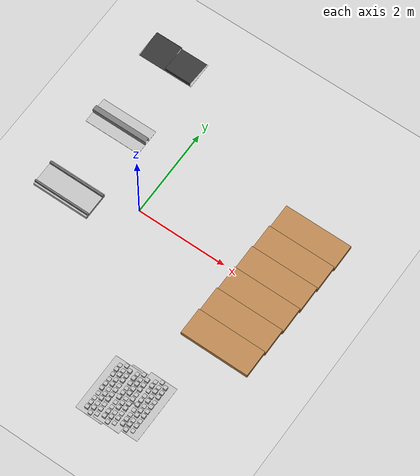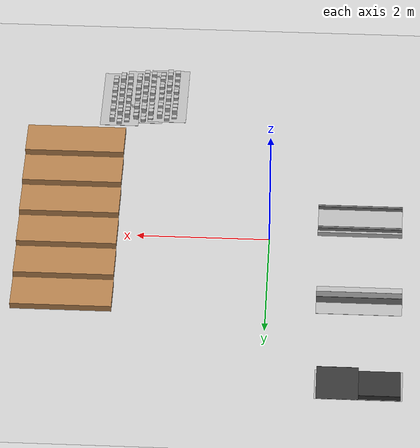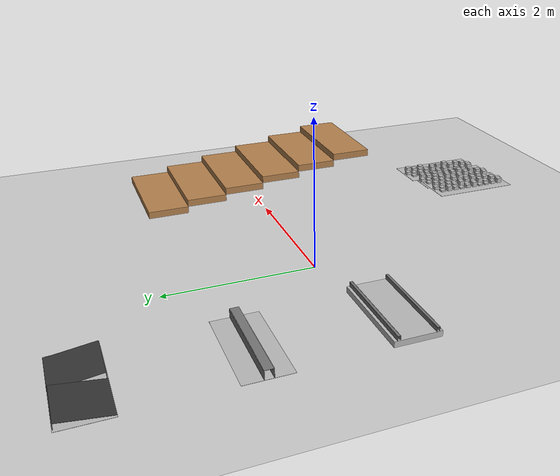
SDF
<sdf version="1.6">
 <world name="default">
  <light name="sun" type="directional">
   <pose>0 0 10 0 -0 0</pose>
   <diffuse>0.8 0.8 0.8 1</diffuse>
   <specular>0.1 0.1 0.1 1</specular>
   <attenuation>
    <range>1000</range>
    <constant>0.9</constant>
    <linear>0.01</linear>
    <quadratic>0.001</quadratic>
   </attenuation>
   <direction>-0.5 0.5 -1</direction>
  </light>
  <model name="ground_plane">
   <static>1</static>
   <link name="link">
    <collision name="collision">
     <geometry><plane><normal>0 0 1</normal><size>100 100</size></plane></geometry>
     <surface><friction><ode><mu>100</mu><mu2>50</mu2></ode></friction></surface>
    </collision>
    <visual name="visual">
     <cast_shadows>0</cast_shadows>
     <geometry><plane><normal>0 0 1</normal><size>100 100</size></plane></geometry>
     <material>
      <script><uri>file://media/materials/scripts/gazebo.material</uri><name>Gazebo/Grey</name></script>
     </material>
    </visual>
   </link>
  </model>
  <gravity>0 0 -9.8</gravity>
  <magnetic_field>6e-06 2.3e-05 -4.2e-05</magnetic_field>
  <atmosphere type="adiabatic"/>
  <physics name="default_physics" default="0" type="ode">
   <max_step_size>0.001</max_step_size>
   <real_time_factor>1</real_time_factor>
   <real_time_update_rate>1000</real_time_update_rate>
  </physics>
  <scene><ambient>0.4 0.4 0.4 1</ambient><background>0.7 0.7 0.7 1</background><shadows>1</shadows></scene>
  <spherical_coordinates>
   <surface_model>EARTH_WGS84</surface_model>
   <latitude_deg>0</latitude_deg>
   <longitude_deg>0</longitude_deg>
   <elevation>0</elevation>
   <heading_deg>0</heading_deg>
  </spherical_coordinates>
  <model name="frc2016_roughterrain">
   <static>1</static>
   <link name="link">
    <visual name="platform">
     <pose>0 0 0.08269 0 -0 0</pose>
     <geometry><box><size>1.27 0.5969 0.003175</size></box></geometry>
    </visual>
    <collision name="platform">
     <pose>0 0 0.08269 0 -0 0</pose>
     <geometry><box><size>1.27 0.5969 0.003175</size></box></geometry>
    </collision>
    <visual name="row1_block1_sm">
     <pose>0.51435 0.1143 0.09698 0 -0 0</pose>
     <geometry><box><size>0.0762 0.0762 0.0254</size></box></geometry>
    </visual>
    <collision name="row1_block1_sm">
     <pose>0.51435 0.1143 0.09698 0 -0 0</pose>
     <geometry><box><size>0.0762 0.0762 0.0254</size></box></geometry>
    </collision>
    <visual name="row1_block2_lg">
     <pose>0.40005 0.1143 0.12238 0 -0 0</pose>
     <geometry><box><size>0.0762 0.0762 0.0762</size></box></geometry>
    </visual>
    <collision name="row1_block2_lg">
     <pose>0.40005 0.1143 0.12238 0 -0 0</pose>
     <geometry><box><size>0.0762 0.0762 0.0762</size></box></geometry>
    </collision>
    <visual name="row1_block3_md">
     <pose>0.28575 0.1143 0.10968 0 -0 0</pose>
     <geometry><box><size>0.0762 0.0762 0.0508</size></box></geometry>
    </visual>
    <collision name="row1_block3_md">
     <pose>0.28575 0.1143 0.10968 0 -0 0</pose>
     <geometry><box><size>0.0762 0.0762 0.0508</size></box></geometry>
    </collision>
    <visual name="row1_block4_sm">
     <pose>0.17145 0.1143 0.09698 0 -0 0</pose>
     <geometry><box><size>0.0762 0.0762 0.0254</size></box></geometry>
    </visual>
    <collision name="row1_block4_sm">
     <pose>0.17145 0.1143 0.09698 0 -0 0</pose>
     <geometry><box><size>0.0762 0.0762 0.0254</size></box></geometry>
    </collision>
    <visual name="row1_block5_md">
     <pose>0.05715 0.1143 0.10968 0 -0 0</pose>
     <geometry><box><size>0.0762 0.0762 0.0508</size></box></geometry>
    </visual>
    <collision name="row1_block5_md">
     <pose>0.05715 0.1143 0.10968 0 -0 0</pose>
     <geometry><box><size>0.0762 0.0762 0.0508</size></box></geometry>
    </collision>
    <visual name="row1_block6_lg">
     <pose>-0.05715 0.1143 0.12238 0 -0 0</pose>
     <geometry><box><size>0.0762 0.0762 0.0762</size></box></geometry>
    </visual>
    <collision name="row1_block6_lg">
     <pose>-0.05715 0.1143 0.12238 0 -0 0</pose>
     <geometry><box><size>0.0762 0.0762 0.0762</size></box></geometry>
    </collision>
    <visual name="row1_block7_sm">
     <pose>-0.17145 0.1143 0.09698 0 -0 0</pose>
     <geometry><box><size>0.0762 0.0762 0.0254</size></box></geometry>
    </visual>
    <collision name="row1_block7_sm">
     <pose>-0.17145 0.1143 0.09698 0 -0 0</pose>
     <geometry><box><size>0.0762 0.0762 0.0254</size></box></geometry>
    </collision>
    <visual name="row1_block8_sm">
     <pose>-0.28575 0.1143 0.09698 0 -0 0</pose>
     <geometry><box><size>0.0762 0.0762 0.0254</size></box></geometry>
    </visual>
    <collision name="row1_block8_sm">
     <pose>-0.28575 0.1143 0.09698 0 -0 0</pose>
     <geometry><box><size>0.0762 0.0762 0.0254</size></box></geometry>
    </collision>
    <visual name="row1_block9_md">
     <pose>-0.40005 0.1143 0.10968 0 -0 0</pose>
     <geometry><box><size>0.0762 0.0762 0.0508</size></box></geometry>
    </visual>
    <collision name="row1_block9_md">
     <pose>-0.40005 0.1143 0.10968 0 -0 0</pose>
     <geometry><box><size>0.0762 0.0762 0.0508</size></box></geometry>
    </collision>
    <visual name="row1_block10_lg">
     <pose>-0.51435 0.1143 0.12238 0 -0 0</pose>
     <geometry><box><size>0.0762 0.0762 0.0762</size></box></geometry>
    </visual>
    <collision name="row1_block10_lg">
     <pose>-0.51435 0.1143 0.12238 0 -0 0</pose>
     <geometry><box><size>0.0762 0.0762 0.0762</size></box></geometry>
    </collision>
    <visual name="row2_block1_md">
     <pose>0.5715 0 0.10968 0 -0 0</pose>
     <geometry><box><size>0.0762 0.0762 0.0508</size></box></geometry>
    </visual>
    <collision name="row2_block1_md">
     <pose>0.5715 0 0.10968 0 -0 0</pose>
     <geometry><box><size>0.0762 0.0762 0.0508</size></box></geometry>
    </collision>
    <visual name="row2_block2_sm">
     <pose>0.4572 0 0.09698 0 -0 0</pose>
     <geometry><box><size>0.0762 0.0762 0.0254</size></box></geometry>
    </visual>
    <collision name="row2_block2_sm">
     <pose>0.4572 0 0.09698 0 -0 0</pose>
     <geometry><box><size>0.0762 0.0762 0.0254</size></box></geometry>
    </collision>
    <visual name="row2_block3_lg">
     <pose>0.3429 0 0.12238 0 -0 0</pose>
     <geometry><box><size>0.0762 0.0762 0.0762</size></box></geometry>
    </visual>
    <collision name="row2_block3_lg">
     <pose>0.3429 0 0.12238 0 -0 0</pose>
     <geometry><box><size>0.0762 0.0762 0.0762</size></box></geometry>
    </collision>
    <visual name="row2_block4_md">
     <pose>0.2286 0 0.10968 0 -0 0</pose>
     <geometry><box><size>0.0762 0.0762 0.0508</size></box></geometry>
    </visual>
    <collision name="row2_block4_md">
     <pose>0.2286 0 0.10968 0 -0 0</pose>
     <geometry><box><size>0.0762 0.0762 0.0508</size></box></geometry>
    </collision>
    <visual name="row2_block5_lg">
     <pose>0.1143 0 0.12238 0 -0 0</pose>
     <geometry><box><size>0.0762 0.0762 0.0762</size></box></geometry>
    </visual>
    <collision name="row2_block5_lg">
     <pose>0.1143 0 0.12238 0 -0 0</pose>
     <geometry><box><size>0.0762 0.0762 0.0762</size></box></geometry>
    </collision>
    <visual name="row2_block6_sm">
     <pose>0 0 0.09698 0 -0 0</pose>
     <geometry><box><size>0.0762 0.0762 0.0254</size></box></geometry>
    </visual>
    <collision name="row2_block6_sm">
     <pose>0 0 0.09698 0 -0 0</pose>
     <geometry><box><size>0.0762 0.0762 0.0254</size></box></geometry>
    </collision>
    <visual name="row2_block7_md">
     <pose>-0.1143 0 0.10968 0 -0 0</pose>
     <geometry><box><size>0.0762 0.0762 0.0508</size></box></geometry>
    </visual>
    <collision name="row2_block7_md">
     <pose>-0.1143 0 0.10968 0 -0 0</pose>
     <geometry><box><size>0.0762 0.0762 0.0508</size></box></geometry>
    </collision>
    <visual name="row2_block8_lg">
     <pose>-0.2286 0 0.12238 0 -0 0</pose>
     <geometry><box><size>0.0762 0.0762 0.0762</size></box></geometry>
    </visual>
    <collision name="row2_block8_lg">
     <pose>-0.2286 0 0.12238 0 -0 0</pose>
     <geometry><box><size>0.0762 0.0762 0.0762</size></box></geometry>
    </collision>
    <visual name="row2_block9_sm">
     <pose>-0.3429 0 0.09698 0 -0 0</pose>
     <geometry><box><size>0.0762 0.0762 0.0254</size></box></geometry>
    </visual>
    <collision name="row2_block9_sm">
     <pose>-0.3429 0 0.09698 0 -0 0</pose>
     <geometry><box><size>0.0762 0.0762 0.0254</size></box></geometry>
    </collision>
    <visual name="row2_block10_lg">
     <pose>-0.4572 0 0.12238 0 -0 0</pose>
     <geometry><box><size>0.0762 0.0762 0.0762</size></box></geometry>
    </visual>
    <collision name="row2_block10_lg">
     <pose>-0.4572 0 0.12238 0 -0 0</pose>
     <geometry><box><size>0.0762 0.0762 0.0762</size></box></geometry>
    </collision>
    <visual name="row2_block11_md">
     <pose>-0.5715 0 0.10968 0 -0 0</pose>
     <geometry><box><size>0.0762 0.0762 0.0508</size></box></geometry>
    </visual>
    <collision name="row2_block11_md">
     <pose>-0.5715 0 0.10968 0 -0 0</pose>
     <geometry><box><size>0.0762 0.0762 0.0508</size></box></geometry>
    </collision>
    <visual name="row3_block1_lg">
     <pose>0.51435 -0.1143 0.12238 0 -0 0</pose>
     <geometry><box><size>0.0762 0.0762 0.0762</size></box></geometry>
    </visual>
    <collision name="row3_block1_lg">
     <pose>0.51435 -0.1143 0.12238 0 -0 0</pose>
     <geometry><box><size>0.0762 0.0762 0.0762</size></box></geometry>
    </collision>
    <visual name="row3_block2_md">
     <pose>0.40005 -0.1143 0.10968 0 -0 0</pose>
     <geometry><box><size>0.0762 0.0762 0.0508</size></box></geometry>
    </visual>
    <collision name="row3_block2_md">
     <pose>0.40005 -0.1143 0.10968 0 -0 0</pose>
     <geometry><box><size>0.0762 0.0762 0.0508</size></box></geometry>
    </collision>
    <visual name="row3_block3_lg">
     <pose>0.28575 -0.1143 0.12238 0 -0 0</pose>
     <geometry><box><size>0.0762 0.0762 0.0762</size></box></geometry>
    </visual>
    <collision name="row3_block3_lg">
     <pose>0.28575 -0.1143 0.12238 0 -0 0</pose>
     <geometry><box><size>0.0762 0.0762 0.0762</size></box></geometry>
    </collision>
    <visual name="row3_block4_sm">
     <pose>0.17145 -0.1143 0.09698 0 -0 0</pose>
     <geometry><box><size>0.0762 0.0762 0.0254</size></box></geometry>
    </visual>
    <collision name="row3_block4_sm">
     <pose>0.17145 -0.1143 0.09698 0 -0 0</pose>
     <geometry><box><size>0.0762 0.0762 0.0254</size></box></geometry>
    </collision>
    <visual name="row3_block5_md">
     <pose>0.05715 -0.1143 0.10968 0 -0 0</pose>
     <geometry><box><size>0.0762 0.0762 0.0508</size></box></geometry>
    </visual>
    <collision name="row3_block5_md">
     <pose>0.05715 -0.1143 0.10968 0 -0 0</pose>
     <geometry><box><size>0.0762 0.0762 0.0508</size></box></geometry>
    </collision>
    <visual name="row3_block6_md">
     <pose>-0.05715 -0.1143 0.10968 0 -0 0</pose>
     <geometry><box><size>0.0762 0.0762 0.0508</size></box></geometry>
    </visual>
    <collision name="row3_block6_md">
     <pose>-0.05715 -0.1143 0.10968 0 -0 0</pose>
     <geometry><box><size>0.0762 0.0762 0.0508</size></box></geometry>
    </collision>
    <visual name="row3_block7_lg">
     <pose>-0.17145 -0.1143 0.12238 0 -0 0</pose>
     <geometry><box><size>0.0762 0.0762 0.0762</size></box></geometry>
    </visual>
    <collision name="row3_block7_lg">
     <pose>-0.17145 -0.1143 0.12238 0 -0 0</pose>
     <geometry><box><size>0.0762 0.0762 0.0762</size></box></geometry>
    </collision>
    <visual name="row3_block8_sm">
     <pose>-0.28575 -0.1143 0.09698 0 -0 0</pose>
     <geometry><box><size>0.0762 0.0762 0.0254</size></box></geometry>
    </visual>
    <collision name="row3_block8_sm">
     <pose>-0.28575 -0.1143 0.09698 0 -0 0</pose>
     <geometry><box><size>0.0762 0.0762 0.0254</size></box></geometry>
    </collision>
    <visual name="row3_block9_md">
     <pose>-0.40005 -0.1143 0.10968 0 -0 0</pose>
     <geometry><box><size>0.0762 0.0762 0.0508</size></box></geometry>
    </visual>
    <collision name="row3_block9_md">
     <pose>-0.40005 -0.1143 0.10968 0 -0 0</pose>
     <geometry><box><size>0.0762 0.0762 0.0508</size></box></geometry>
    </collision>
    <visual name="row3_block10_sm">
     <pose>-0.51435 -0.1143 0.09698 0 -0 0</pose>
     <geometry><box><size>0.0762 0.0762 0.0254</size></box></geometry>
    </visual>
    <collision name="row3_block10_sm">
     <pose>-0.51435 -0.1143 0.09698 0 -0 0</pose>
     <geometry><box><size>0.0762 0.0762 0.0254</size></box></geometry>
    </collision>
   </link>
   <pose>1.70324 -3.32243 -0.086398 0 -0 1.56747</pose>
  </model>
  <model name="frc2016_roughterrain_clone">
   <static>1</static>
   <link name="link">
    <visual name="platform">
     <pose>0 0 0.08269 0 -0 0</pose>
     <geometry><box><size>1.27 0.5969 0.003175</size></box></geometry>
    </visual>
    <collision name="platform">
     <pose>0 0 0.08269 0 -0 0</pose>
     <geometry><box><size>1.27 0.5969 0.003175</size></box></geometry>
    </collision>
    <visual name="row1_block1_sm">
     <pose>0.51435 0.1143 0.09698 0 -0 0</pose>
     <geometry><box><size>0.0762 0.0762 0.0254</size></box></geometry>
    </visual>
    <collision name="row1_block1_sm">
     <pose>0.51435 0.1143 0.09698 0 -0 0</pose>
     <geometry><box><size>0.0762 0.0762 0.0254</size></box></geometry>
    </collision>
    <visual name="row1_block2_lg">
     <pose>0.40005 0.1143 0.12238 0 -0 0</pose>
     <geometry><box><size>0.0762 0.0762 0.0762</size></box></geometry>
    </visual>
    <collision name="row1_block2_lg">
     <pose>0.40005 0.1143 0.12238 0 -0 0</pose>
     <geometry><box><size>0.0762 0.0762 0.0762</size></box></geometry>
    </collision>
    <visual name="row1_block3_md">
     <pose>0.28575 0.1143 0.10968 0 -0 0</pose>
     <geometry><box><size>0.0762 0.0762 0.0508</size></box></geometry>
    </visual>
    <collision name="row1_block3_md">
     <pose>0.28575 0.1143 0.10968 0 -0 0</pose>
     <geometry><box><size>0.0762 0.0762 0.0508</size></box></geometry>
    </collision>
    <visual name="row1_block4_sm">
     <pose>0.17145 0.1143 0.09698 0 -0 0</pose>
     <geometry><box><size>0.0762 0.0762 0.0254</size></box></geometry>
    </visual>
    <collision name="row1_block4_sm">
     <pose>0.17145 0.1143 0.09698 0 -0 0</pose>
     <geometry><box><size>0.0762 0.0762 0.0254</size></box></geometry>
    </collision>
    <visual name="row1_block5_md">
     <pose>0.05715 0.1143 0.10968 0 -0 0</pose>
     <geometry><box><size>0.0762 0.0762 0.0508</size></box></geometry>
    </visual>
    <collision name="row1_block5_md">
     <pose>0.05715 0.1143 0.10968 0 -0 0</pose>
     <geometry><box><size>0.0762 0.0762 0.0508</size></box></geometry>
    </collision>
    <visual name="row1_block6_lg">
     <pose>-0.05715 0.1143 0.12238 0 -0 0</pose>
     <geometry><box><size>0.0762 0.0762 0.0762</size></box></geometry>
    </visual>
    <collision name="row1_block6_lg">
     <pose>-0.05715 0.1143 0.12238 0 -0 0</pose>
     <geometry><box><size>0.0762 0.0762 0.0762</size></box></geometry>
    </collision>
    <visual name="row1_block7_sm">
     <pose>-0.17145 0.1143 0.09698 0 -0 0</pose>
     <geometry><box><size>0.0762 0.0762 0.0254</size></box></geometry>
    </visual>
    <collision name="row1_block7_sm">
     <pose>-0.17145 0.1143 0.09698 0 -0 0</pose>
     <geometry><box><size>0.0762 0.0762 0.0254</size></box></geometry>
    </collision>
    <visual name="row1_block8_sm">
     <pose>-0.28575 0.1143 0.09698 0 -0 0</pose>
     <geometry><box><size>0.0762 0.0762 0.0254</size></box></geometry>
    </visual>
    <collision name="row1_block8_sm">
     <pose>-0.28575 0.1143 0.09698 0 -0 0</pose>
     <geometry><box><size>0.0762 0.0762 0.0254</size></box></geometry>
    </collision>
    <visual name="row1_block9_md">
     <pose>-0.40005 0.1143 0.10968 0 -0 0</pose>
     <geometry><box><size>0.0762 0.0762 0.0508</size></box></geometry>
    </visual>
    <collision name="row1_block9_md">
     <pose>-0.40005 0.1143 0.10968 0 -0 0</pose>
     <geometry><box><size>0.0762 0.0762 0.0508</size></box></geometry>
    </collision>
    <visual name="row1_block10_lg">
     <pose>-0.51435 0.1143 0.12238 0 -0 0</pose>
     <geometry><box><size>0.0762 0.0762 0.0762</size></box></geometry>
    </visual>
    <collision name="row1_block10_lg">
     <pose>-0.51435 0.1143 0.12238 0 -0 0</pose>
     <geometry><box><size>0.0762 0.0762 0.0762</size></box></geometry>
    </collision>
    <visual name="row2_block1_md">
     <pose>0.5715 0 0.10968 0 -0 0</pose>
     <geometry><box><size>0.0762 0.0762 0.0508</size></box></geometry>
    </visual>
    <collision name="row2_block1_md">
     <pose>0.5715 0 0.10968 0 -0 0</pose>
     <geometry><box><size>0.0762 0.0762 0.0508</size></box></geometry>
    </collision>
    <visual name="row2_block2_sm">
     <pose>0.4572 0 0.09698 0 -0 0</pose>
     <geometry><box><size>0.0762 0.0762 0.0254</size></box></geometry>
    </visual>
    <collision name="row2_block2_sm">
     <pose>0.4572 0 0.09698 0 -0 0</pose>
     <geometry><box><size>0.0762 0.0762 0.0254</size></box></geometry>
    </collision>
    <visual name="row2_block3_lg">
     <pose>0.3429 0 0.12238 0 -0 0</pose>
     <geometry><box><size>0.0762 0.0762 0.0762</size></box></geometry>
    </visual>
    <collision name="row2_block3_lg">
     <pose>0.3429 0 0.12238 0 -0 0</pose>
     <geometry><box><size>0.0762 0.0762 0.0762</size></box></geometry>
    </collision>
    <visual name="row2_block4_md">
     <pose>0.2286 0 0.10968 0 -0 0</pose>
     <geometry><box><size>0.0762 0.0762 0.0508</size></box></geometry>
    </visual>
    <collision name="row2_block4_md">
     <pose>0.2286 0 0.10968 0 -0 0</pose>
     <geometry><box><size>0.0762 0.0762 0.0508</size></box></geometry>
    </collision>
    <visual name="row2_block5_lg">
     <pose>0.1143 0 0.12238 0 -0 0</pose>
     <geometry><box><size>0.0762 0.0762 0.0762</size></box></geometry>
    </visual>
    <collision name="row2_block5_lg">
     <pose>0.1143 0 0.12238 0 -0 0</pose>
     <geometry><box><size>0.0762 0.0762 0.0762</size></box></geometry>
    </collision>
    <visual name="row2_block6_sm">
     <pose>0 0 0.09698 0 -0 0</pose>
     <geometry><box><size>0.0762 0.0762 0.0254</size></box></geometry>
    </visual>
    <collision name="row2_block6_sm">
     <pose>0 0 0.09698 0 -0 0</pose>
     <geometry><box><size>0.0762 0.0762 0.0254</size></box></geometry>
    </collision>
    <visual name="row2_block7_md">
     <pose>-0.1143 0 0.10968 0 -0 0</pose>
     <geometry><box><size>0.0762 0.0762 0.0508</size></box></geometry>
    </visual>
    <collision name="row2_block7_md">
     <pose>-0.1143 0 0.10968 0 -0 0</pose>
     <geometry><box><size>0.0762 0.0762 0.0508</size></box></geometry>
    </collision>
    <visual name="row2_block8_lg">
     <pose>-0.2286 0 0.12238 0 -0 0</pose>
     <geometry><box><size>0.0762 0.0762 0.0762</size></box></geometry>
    </visual>
    <collision name="row2_block8_lg">
     <pose>-0.2286 0 0.12238 0 -0 0</pose>
     <geometry><box><size>0.0762 0.0762 0.0762</size></box></geometry>
    </collision>
    <visual name="row2_block9_sm">
     <pose>-0.3429 0 0.09698 0 -0 0</pose>
     <geometry><box><size>0.0762 0.0762 0.0254</size></box></geometry>
    </visual>
    <collision name="row2_block9_sm">
     <pose>-0.3429 0 0.09698 0 -0 0</pose>
     <geometry><box><size>0.0762 0.0762 0.0254</size></box></geometry>
    </collision>
    <visual name="row2_block10_lg">
     <pose>-0.4572 0 0.12238 0 -0 0</pose>
     <geometry><box><size>0.0762 0.0762 0.0762</size></box></geometry>
    </visual>
    <collision name="row2_block10_lg">
     <pose>-0.4572 0 0.12238 0 -0 0</pose>
     <geometry><box><size>0.0762 0.0762 0.0762</size></box></geometry>
    </collision>
    <visual name="row2_block11_md">
     <pose>-0.5715 0 0.10968 0 -0 0</pose>
     <geometry><box><size>0.0762 0.0762 0.0508</size></box></geometry>
    </visual>
    <collision name="row2_block11_md">
     <pose>-0.5715 0 0.10968 0 -0 0</pose>
     <geometry><box><size>0.0762 0.0762 0.0508</size></box></geometry>
    </collision>
    <visual name="row3_block1_lg">
     <pose>0.51435 -0.1143 0.12238 0 -0 0</pose>
     <geometry><box><size>0.0762 0.0762 0.0762</size></box></geometry>
    </visual>
    <collision name="row3_block1_lg">
     <pose>0.51435 -0.1143 0.12238 0 -0 0</pose>
     <geometry><box><size>0.0762 0.0762 0.0762</size></box></geometry>
    </collision>
    <visual name="row3_block2_md">
     <pose>0.40005 -0.1143 0.10968 0 -0 0</pose>
     <geometry><box><size>0.0762 0.0762 0.0508</size></box></geometry>
    </visual>
    <collision name="row3_block2_md">
     <pose>0.40005 -0.1143 0.10968 0 -0 0</pose>
     <geometry><box><size>0.0762 0.0762 0.0508</size></box></geometry>
    </collision>
    <visual name="row3_block3_lg">
     <pose>0.28575 -0.1143 0.12238 0 -0 0</pose>
     <geometry><box><size>0.0762 0.0762 0.0762</size></box></geometry>
    </visual>
    <collision name="row3_block3_lg">
     <pose>0.28575 -0.1143 0.12238 0 -0 0</pose>
     <geometry><box><size>0.0762 0.0762 0.0762</size></box></geometry>
    </collision>
    <visual name="row3_block4_sm">
     <pose>0.17145 -0.1143 0.09698 0 -0 0</pose>
     <geometry><box><size>0.0762 0.0762 0.0254</size></box></geometry>
    </visual>
    <collision name="row3_block4_sm">
     <pose>0.17145 -0.1143 0.09698 0 -0 0</pose>
     <geometry><box><size>0.0762 0.0762 0.0254</size></box></geometry>
    </collision>
    <visual name="row3_block5_md">
     <pose>0.05715 -0.1143 0.10968 0 -0 0</pose>
     <geometry><box><size>0.0762 0.0762 0.0508</size></box></geometry>
    </visual>
    <collision name="row3_block5_md">
     <pose>0.05715 -0.1143 0.10968 0 -0 0</pose>
     <geometry><box><size>0.0762 0.0762 0.0508</size></box></geometry>
    </collision>
    <visual name="row3_block6_md">
     <pose>-0.05715 -0.1143 0.10968 0 -0 0</pose>
     <geometry><box><size>0.0762 0.0762 0.0508</size></box></geometry>
    </visual>
    <collision name="row3_block6_md">
     <pose>-0.05715 -0.1143 0.10968 0 -0 0</pose>
     <geometry><box><size>0.0762 0.0762 0.0508</size></box></geometry>
    </collision>
    <visual name="row3_block7_lg">
     <pose>-0.17145 -0.1143 0.12238 0 -0 0</pose>
     <geometry><box><size>0.0762 0.0762 0.0762</size></box></geometry>
    </visual>
    <collision name="row3_block7_lg">
     <pose>-0.17145 -0.1143 0.12238 0 -0 0</pose>
     <geometry><box><size>0.0762 0.0762 0.0762</size></box></geometry>
    </collision>
    <visual name="row3_block8_sm">
     <pose>-0.28575 -0.1143 0.09698 0 -0 0</pose>
     <geometry><box><size>0.0762 0.0762 0.0254</size></box></geometry>
    </visual>
    <collision name="row3_block8_sm">
     <pose>-0.28575 -0.1143 0.09698 0 -0 0</pose>
     <geometry><box><size>0.0762 0.0762 0.0254</size></box></geometry>
    </collision>
    <visual name="row3_block9_md">
     <pose>-0.40005 -0.1143 0.10968 0 -0 0</pose>
     <geometry><box><size>0.0762 0.0762 0.0508</size></box></geometry>
    </visual>
    <collision name="row3_block9_md">
     <pose>-0.40005 -0.1143 0.10968 0 -0 0</pose>
     <geometry><box><size>0.0762 0.0762 0.0508</size></box></geometry>
    </collision>
    <visual name="row3_block10_sm">
     <pose>-0.51435 -0.1143 0.09698 0 -0 0</pose>
     <geometry><box><size>0.0762 0.0762 0.0254</size></box></geometry>
    </visual>
    <collision name="row3_block10_sm">
     <pose>-0.51435 -0.1143 0.09698 0 -0 0</pose>
     <geometry><box><size>0.0762 0.0762 0.0254</size></box></geometry>
    </collision>
   </link>
   <pose>2.07302 -3.28394 -0.086398 0 -0 1.56747</pose>
  </model>
  <model name="frc2016_roughterrain_clone_0">
   <static>1</static>
   <link name="link">
    <visual name="platform">
     <pose>0 0 0.08269 0 -0 0</pose>
     <geometry><box><size>1.27 0.5969 0.003175</size></box></geometry>
    </visual>
    <collision name="platform">
     <pose>0 0 0.08269 0 -0 0</pose>
     <geometry><box><size>1.27 0.5969 0.003175</size></box></geometry>
    </collision>
    <visual name="row1_block1_sm">
     <pose>0.51435 0.1143 0.09698 0 -0 0</pose>
     <geometry><box><size>0.0762 0.0762 0.0254</size></box></geometry>
    </visual>
    <collision name="row1_block1_sm">
     <pose>0.51435 0.1143 0.09698 0 -0 0</pose>
     <geometry><box><size>0.0762 0.0762 0.0254</size></box></geometry>
    </collision>
    <visual name="row1_block2_lg">
     <pose>0.40005 0.1143 0.12238 0 -0 0</pose>
     <geometry><box><size>0.0762 0.0762 0.0762</size></box></geometry>
    </visual>
    <collision name="row1_block2_lg">
     <pose>0.40005 0.1143 0.12238 0 -0 0</pose>
     <geometry><box><size>0.0762 0.0762 0.0762</size></box></geometry>
    </collision>
    <visual name="row1_block3_md">
     <pose>0.28575 0.1143 0.10968 0 -0 0</pose>
     <geometry><box><size>0.0762 0.0762 0.0508</size></box></geometry>
    </visual>
    <collision name="row1_block3_md">
     <pose>0.28575 0.1143 0.10968 0 -0 0</pose>
     <geometry><box><size>0.0762 0.0762 0.0508</size></box></geometry>
    </collision>
    <visual name="row1_block4_sm">
     <pose>0.17145 0.1143 0.09698 0 -0 0</pose>
     <geometry><box><size>0.0762 0.0762 0.0254</size></box></geometry>
    </visual>
    <collision name="row1_block4_sm">
     <pose>0.17145 0.1143 0.09698 0 -0 0</pose>
     <geometry><box><size>0.0762 0.0762 0.0254</size></box></geometry>
    </collision>
    <visual name="row1_block5_md">
     <pose>0.05715 0.1143 0.10968 0 -0 0</pose>
     <geometry><box><size>0.0762 0.0762 0.0508</size></box></geometry>
    </visual>
    <collision name="row1_block5_md">
     <pose>0.05715 0.1143 0.10968 0 -0 0</pose>
     <geometry><box><size>0.0762 0.0762 0.0508</size></box></geometry>
    </collision>
    <visual name="row1_block6_lg">
     <pose>-0.05715 0.1143 0.12238 0 -0 0</pose>
     <geometry><box><size>0.0762 0.0762 0.0762</size></box></geometry>
    </visual>
    <collision name="row1_block6_lg">
     <pose>-0.05715 0.1143 0.12238 0 -0 0</pose>
     <geometry><box><size>0.0762 0.0762 0.0762</size></box></geometry>
    </collision>
    <visual name="row1_block7_sm">
     <pose>-0.17145 0.1143 0.09698 0 -0 0</pose>
     <geometry><box><size>0.0762 0.0762 0.0254</size></box></geometry>
    </visual>
    <collision name="row1_block7_sm">
     <pose>-0.17145 0.1143 0.09698 0 -0 0</pose>
     <geometry><box><size>0.0762 0.0762 0.0254</size></box></geometry>
    </collision>
    <visual name="row1_block8_sm">
     <pose>-0.28575 0.1143 0.09698 0 -0 0</pose>
     <geometry><box><size>0.0762 0.0762 0.0254</size></box></geometry>
    </visual>
    <collision name="row1_block8_sm">
     <pose>-0.28575 0.1143 0.09698 0 -0 0</pose>
     <geometry><box><size>0.0762 0.0762 0.0254</size></box></geometry>
    </collision>
    <visual name="row1_block9_md">
     <pose>-0.40005 0.1143 0.10968 0 -0 0</pose>
     <geometry><box><size>0.0762 0.0762 0.0508</size></box></geometry>
    </visual>
    <collision name="row1_block9_md">
     <pose>-0.40005 0.1143 0.10968 0 -0 0</pose>
     <geometry><box><size>0.0762 0.0762 0.0508</size></box></geometry>
    </collision>
    <visual name="row1_block10_lg">
     <pose>-0.51435 0.1143 0.12238 0 -0 0</pose>
     <geometry><box><size>0.0762 0.0762 0.0762</size></box></geometry>
    </visual>
    <collision name="row1_block10_lg">
     <pose>-0.51435 0.1143 0.12238 0 -0 0</pose>
     <geometry><box><size>0.0762 0.0762 0.0762</size></box></geometry>
    </collision>
    <visual name="row2_block1_md">
     <pose>0.5715 0 0.10968 0 -0 0</pose>
     <geometry><box><size>0.0762 0.0762 0.0508</size></box></geometry>
    </visual>
    <collision name="row2_block1_md">
     <pose>0.5715 0 0.10968 0 -0 0</pose>
     <geometry><box><size>0.0762 0.0762 0.0508</size></box></geometry>
    </collision>
    <visual name="row2_block2_sm">
     <pose>0.4572 0 0.09698 0 -0 0</pose>
     <geometry><box><size>0.0762 0.0762 0.0254</size></box></geometry>
    </visual>
    <collision name="row2_block2_sm">
     <pose>0.4572 0 0.09698 0 -0 0</pose>
     <geometry><box><size>0.0762 0.0762 0.0254</size></box></geometry>
    </collision>
    <visual name="row2_block3_lg">
     <pose>0.3429 0 0.12238 0 -0 0</pose>
     <geometry><box><size>0.0762 0.0762 0.0762</size></box></geometry>
    </visual>
    <collision name="row2_block3_lg">
     <pose>0.3429 0 0.12238 0 -0 0</pose>
     <geometry><box><size>0.0762 0.0762 0.0762</size></box></geometry>
    </collision>
    <visual name="row2_block4_md">
     <pose>0.2286 0 0.10968 0 -0 0</pose>
     <geometry><box><size>0.0762 0.0762 0.0508</size></box></geometry>
    </visual>
    <collision name="row2_block4_md">
     <pose>0.2286 0 0.10968 0 -0 0</pose>
     <geometry><box><size>0.0762 0.0762 0.0508</size></box></geometry>
    </collision>
    <visual name="row2_block5_lg">
     <pose>0.1143 0 0.12238 0 -0 0</pose>
     <geometry><box><size>0.0762 0.0762 0.0762</size></box></geometry>
    </visual>
    <collision name="row2_block5_lg">
     <pose>0.1143 0 0.12238 0 -0 0</pose>
     <geometry><box><size>0.0762 0.0762 0.0762</size></box></geometry>
    </collision>
    <visual name="row2_block6_sm">
     <pose>0 0 0.09698 0 -0 0</pose>
     <geometry><box><size>0.0762 0.0762 0.0254</size></box></geometry>
    </visual>
    <collision name="row2_block6_sm">
     <pose>0 0 0.09698 0 -0 0</pose>
     <geometry><box><size>0.0762 0.0762 0.0254</size></box></geometry>
    </collision>
    <visual name="row2_block7_md">
     <pose>-0.1143 0 0.10968 0 -0 0</pose>
     <geometry><box><size>0.0762 0.0762 0.0508</size></box></geometry>
    </visual>
    <collision name="row2_block7_md">
     <pose>-0.1143 0 0.10968 0 -0 0</pose>
     <geometry><box><size>0.0762 0.0762 0.0508</size></box></geometry>
    </collision>
    <visual name="row2_block8_lg">
     <pose>-0.2286 0 0.12238 0 -0 0</pose>
     <geometry><box><size>0.0762 0.0762 0.0762</size></box></geometry>
    </visual>
    <collision name="row2_block8_lg">
     <pose>-0.2286 0 0.12238 0 -0 0</pose>
     <geometry><box><size>0.0762 0.0762 0.0762</size></box></geometry>
    </collision>
    <visual name="row2_block9_sm">
     <pose>-0.3429 0 0.09698 0 -0 0</pose>
     <geometry><box><size>0.0762 0.0762 0.0254</size></box></geometry>
    </visual>
    <collision name="row2_block9_sm">
     <pose>-0.3429 0 0.09698 0 -0 0</pose>
     <geometry><box><size>0.0762 0.0762 0.0254</size></box></geometry>
    </collision>
    <visual name="row2_block10_lg">
     <pose>-0.4572 0 0.12238 0 -0 0</pose>
     <geometry><box><size>0.0762 0.0762 0.0762</size></box></geometry>
    </visual>
    <collision name="row2_block10_lg">
     <pose>-0.4572 0 0.12238 0 -0 0</pose>
     <geometry><box><size>0.0762 0.0762 0.0762</size></box></geometry>
    </collision>
    <visual name="row2_block11_md">
     <pose>-0.5715 0 0.10968 0 -0 0</pose>
     <geometry><box><size>0.0762 0.0762 0.0508</size></box></geometry>
    </visual>
    <collision name="row2_block11_md">
     <pose>-0.5715 0 0.10968 0 -0 0</pose>
     <geometry><box><size>0.0762 0.0762 0.0508</size></box></geometry>
    </collision>
    <visual name="row3_block1_lg">
     <pose>0.51435 -0.1143 0.12238 0 -0 0</pose>
     <geometry><box><size>0.0762 0.0762 0.0762</size></box></geometry>
    </visual>
    <collision name="row3_block1_lg">
     <pose>0.51435 -0.1143 0.12238 0 -0 0</pose>
     <geometry><box><size>0.0762 0.0762 0.0762</size></box></geometry>
    </collision>
    <visual name="row3_block2_md">
     <pose>0.40005 -0.1143 0.10968 0 -0 0</pose>
     <geometry><box><size>0.0762 0.0762 0.0508</size></box></geometry>
    </visual>
    <collision name="row3_block2_md">
     <pose>0.40005 -0.1143 0.10968 0 -0 0</pose>
     <geometry><box><size>0.0762 0.0762 0.0508</size></box></geometry>
    </collision>
    <visual name="row3_block3_lg">
     <pose>0.28575 -0.1143 0.12238 0 -0 0</pose>
     <geometry><box><size>0.0762 0.0762 0.0762</size></box></geometry>
    </visual>
    <collision name="row3_block3_lg">
     <pose>0.28575 -0.1143 0.12238 0 -0 0</pose>
     <geometry><box><size>0.0762 0.0762 0.0762</size></box></geometry>
    </collision>
    <visual name="row3_block4_sm">
     <pose>0.17145 -0.1143 0.09698 0 -0 0</pose>
     <geometry><box><size>0.0762 0.0762 0.0254</size></box></geometry>
    </visual>
    <collision name="row3_block4_sm">
     <pose>0.17145 -0.1143 0.09698 0 -0 0</pose>
     <geometry><box><size>0.0762 0.0762 0.0254</size></box></geometry>
    </collision>
    <visual name="row3_block5_md">
     <pose>0.05715 -0.1143 0.10968 0 -0 0</pose>
     <geometry><box><size>0.0762 0.0762 0.0508</size></box></geometry>
    </visual>
    <collision name="row3_block5_md">
     <pose>0.05715 -0.1143 0.10968 0 -0 0</pose>
     <geometry><box><size>0.0762 0.0762 0.0508</size></box></geometry>
    </collision>
    <visual name="row3_block6_md">
     <pose>-0.05715 -0.1143 0.10968 0 -0 0</pose>
     <geometry><box><size>0.0762 0.0762 0.0508</size></box></geometry>
    </visual>
    <collision name="row3_block6_md">
     <pose>-0.05715 -0.1143 0.10968 0 -0 0</pose>
     <geometry><box><size>0.0762 0.0762 0.0508</size></box></geometry>
    </collision>
    <visual name="row3_block7_lg">
     <pose>-0.17145 -0.1143 0.12238 0 -0 0</pose>
     <geometry><box><size>0.0762 0.0762 0.0762</size></box></geometry>
    </visual>
    <collision name="row3_block7_lg">
     <pose>-0.17145 -0.1143 0.12238 0 -0 0</pose>
     <geometry><box><size>0.0762 0.0762 0.0762</size></box></geometry>
    </collision>
    <visual name="row3_block8_sm">
     <pose>-0.28575 -0.1143 0.09698 0 -0 0</pose>
     <geometry><box><size>0.0762 0.0762 0.0254</size></box></geometry>
    </visual>
    <collision name="row3_block8_sm">
     <pose>-0.28575 -0.1143 0.09698 0 -0 0</pose>
     <geometry><box><size>0.0762 0.0762 0.0254</size></box></geometry>
    </collision>
    <visual name="row3_block9_md">
     <pose>-0.40005 -0.1143 0.10968 0 -0 0</pose>
     <geometry><box><size>0.0762 0.0762 0.0508</size></box></geometry>
    </visual>
    <collision name="row3_block9_md">
     <pose>-0.40005 -0.1143 0.10968 0 -0 0</pose>
     <geometry><box><size>0.0762 0.0762 0.0508</size></box></geometry>
    </collision>
    <visual name="row3_block10_sm">
     <pose>-0.51435 -0.1143 0.09698 0 -0 0</pose>
     <geometry><box><size>0.0762 0.0762 0.0254</size></box></geometry>
    </visual>
    <collision name="row3_block10_sm">
     <pose>-0.51435 -0.1143 0.09698 0 -0 0</pose>
     <geometry><box><size>0.0762 0.0762 0.0254</size></box></geometry>
    </collision>
   </link>
   <pose>2.4407 -3.2123 -0.086398 0 -0 1.56747</pose>
  </model>
  <model name="frc2016_ramparts">
   <static>1</static>
   <link name="link">
    <visual name="platform">
     <pose>0 0 0.06967 0 -0 0</pose>
     <geometry><box><size>1.27 0.5969 0.003175</size></box></geometry>
    </visual>
    <collision name="platform">
     <pose>0 0 0.06967 0 -0 0</pose>
     <geometry><box><size>1.27 0.5969 0.003175</size></box></geometry>
    </collision>
    <visual name="ramp1">
     <pose>0.30472 0.00588 0.1109 -0.13 0 0</pose>
     <geometry><box><size>0.60957 0.588891 0.00462</size></box></geometry>
     <material><ambient>0.2 0.2 0.2 1</ambient><diffuse>0.2 0.2 0.2 1</diffuse></material>
    </visual>
    <collision name="ramp1">
     <pose>0.30472 0.00588 0.1109 -0.13 0 0</pose>
     <geometry><box><size>0.60957 0.588891 0.00462</size></box></geometry>
    </collision>
    <visual name="up1">
     <pose>0.30472 -0.28806 0.11072 0 -0 0</pose>
     <geometry><box><size>0.60957 0.00462 0.07872</size></box></geometry>
     <material><ambient>0.2 0.2 0.2 1</ambient><diffuse>0.2 0.2 0.2 1</diffuse></material>
    </visual>
    <collision name="up1">
     <pose>0.30472 -0.28806 0.11072 0 -0 0</pose>
     <geometry><box><size>0.60957 0.00462 0.07872</size></box></geometry>
    </collision>
    <visual name="ramp2">
     <pose>-0.30472 -0.00619 0.1109 0.13 -0 0</pose>
     <geometry><box><size>0.60957 0.588891 0.00462</size></box></geometry>
     <material><ambient>0.2 0.2 0.2 1</ambient><diffuse>0.2 0.2 0.2 1</diffuse></material>
    </visual>
    <collision name="ramp2">
     <pose>-0.30472 -0.00619 0.1109 0.13 -0 0</pose>
     <geometry><box><size>0.60957 0.588891 0.00462</size></box></geometry>
    </collision>
    <visual name="up2">
     <pose>-0.30472 0.28806 0.11072 0 -0 0</pose>
     <geometry><box><size>0.60957 0.00462 0.07872</size></box></geometry>
     <material><ambient>0.2 0.2 0.2 1</ambient><diffuse>0.2 0.2 0.2 1</diffuse></material>
    </visual>
    <collision name="up2">
     <pose>-0.30472 0.28806 0.11072 0 -0 0</pose>
     <geometry><box><size>0.60957 0.00462 0.07872</size></box></geometry>
    </collision>
   </link>
   <pose>-1.39394 3.08885 -0.070276 0 -0 0</pose>
  </model>
  <model name="frc2016_rockwall">
   <static>1</static>
   <link name="link">
    <inertial>
     <mass>10</mass>
     <pose>0 0 0.08974 0 -0 0</pose>
     <inertia><ixx>0.327091</ixx><ixy>0</ixy><ixz>0</ixz><iyy>1.37417</iyy><iyz>0</iyz><izz>1.64109</izz></inertia>
    </inertial>
    <visual name="platform">
     <pose>0 0 0.06432 0 -0 0</pose>
     <geometry><box><size>1.27 0.5969 0.003175</size></box></geometry>
    </visual>
    <collision name="platform">
     <pose>0 0 0.06432 0 -0 0</pose>
     <geometry><box><size>1.27 0.5969 0.003175</size></box></geometry>
    </collision>
    <visual name="up1">
     <pose>0 0.05166 0.12537 0 -0 0</pose>
     <geometry><box><size>1.27 0.00462 0.11892</size></box></geometry>
     <material><ambient>0.46 0.46 0.46 1</ambient><diffuse>0.46 0.46 0.46 1</diffuse></material>
    </visual>
    <collision name="up1">
     <pose>0 0.05166 0.12537 0 -0 0</pose>
     <geometry><box><size>1.27 0.00462 0.11892</size></box></geometry>
    </collision>
    <visual name="up2">
     <pose>0 -0.05801 0.12537 0 -0 0</pose>
     <geometry><box><size>1.27 0.00462 0.11892</size></box></geometry>
     <material><ambient>0.46 0.46 0.46 1</ambient><diffuse>0.46 0.46 0.46 1</diffuse></material>
    </visual>
    <collision name="up2">
     <pose>0 -0.05801 0.12537 0 -0 0</pose>
     <geometry><box><size>1.27 0.00462 0.11892</size></box></geometry>
    </collision>
    <visual name="top">
     <pose>0 -0.00249 0.18252 0 -0 0</pose>
     <geometry><box><size>1.27 0.1143 0.00462</size></box></geometry>
     <material><ambient>0.46 0.46 0.46 1</ambient><diffuse>0.46 0.46 0.46 1</diffuse></material>
    </visual>
    <collision name="top">
     <pose>0 -0.00249 0.18252 0 -0 0</pose>
     <geometry><box><size>1.27 0.1143 0.00462</size></box></geometry>
    </collision>
   </link>
   <pose>-1.3721 1.2854 -0.071452 0 -0 0</pose>
  </model>
  <model name="frc2016_moat">
   <static>1</static>
   <link name="link">
    <inertial>
     <mass>10</mass>
     <pose>0 0 0.06738 0 -0 0</pose>
     <inertia><ixx>0.312195</ixx><ixy>0</ixy><ixz>0</ixz><iyy>1.35927</iyy><iyz>0</iyz><izz>1.64109</izz></inertia>
    </inertial>
    <visual name="platform">
     <pose>0 0 0.0381 0 -0 0</pose>
     <geometry><box><size>1.27 0.5969 0.0762</size></box></geometry>
    </visual>
    <collision name="platform">
     <pose>0 0 0.0381 0 -0 0</pose>
     <geometry><box><size>1.27 0.5969 0.0762</size></box></geometry>
    </collision>
    <visual name="tube1_side1">
     <pose>0 -0.25876 0.10301 0 -0 0</pose>
     <geometry><box><size>1.27 0.003175 0.0635</size></box></geometry>
     <material><ambient>0.46 0.46 0.46 1</ambient><diffuse>0.46 0.46 0.46 1</diffuse></material>
    </visual>
    <collision name="tube1_side1">
     <pose>0 -0.25876 0.10301 0 -0 0</pose>
     <geometry><box><size>1.27 0.003175 0.0635</size></box></geometry>
    </collision>
    <visual name="tube1_side2">
     <pose>0 -0.22384 0.10301 0 -0 0</pose>
     <geometry><box><size>1.27 0.003175 0.0635</size></box></geometry>
     <material><ambient>0.46 0.46 0.46 1</ambient><diffuse>0.46 0.46 0.46 1</diffuse></material>
    </visual>
    <collision name="tube1_side2">
     <pose>0 -0.22384 0.10301 0 -0 0</pose>
     <geometry><box><size>1.27 0.003175 0.0635</size></box></geometry>
    </collision>
    <visual name="tube1_top">
     <pose>0 -0.2413 0.13317 0 -0 0</pose>
     <geometry><box><size>1.27 0.0381 0.003175</size></box></geometry>
     <material><ambient>0.46 0.46 0.46 1</ambient><diffuse>0.46 0.46 0.46 1</diffuse></material>
    </visual>
    <collision name="tube1_top">
     <pose>0 -0.2413 0.13317 0 -0 0</pose>
     <geometry><box><size>1.27 0.0381 0.003175</size></box></geometry>
    </collision>
    <visual name="tube2_side1">
     <pose>0 0.22384 0.10301 0 -0 0</pose>
     <geometry><box><size>1.27 0.003175 0.0635</size></box></geometry>
     <material><ambient>0.46 0.46 0.46 1</ambient><diffuse>0.46 0.46 0.46 1</diffuse></material>
    </visual>
    <collision name="tube2_side1">
     <pose>0 0.22384 0.10301 0 -0 0</pose>
     <geometry><box><size>1.27 0.003175 0.0635</size></box></geometry>
    </collision>
    <visual name="tube2_side2">
     <pose>0 0.25876 0.10301 0 -0 0</pose>
     <geometry><box><size>1.27 0.003175 0.0635</size></box></geometry>
     <material><ambient>0.46 0.46 0.46 1</ambient><diffuse>0.46 0.46 0.46 1</diffuse></material>
    </visual>
    <collision name="tube2_side2">
     <pose>0 0.25876 0.10301 0 -0 0</pose>
     <geometry><box><size>1.27 0.003175 0.0635</size></box></geometry>
    </collision>
    <visual name="tube2_top">
     <pose>0 0.2413 0.13317 0 -0 0</pose>
     <geometry><box><size>1.27 0.0381 0.003175</size></box></geometry>
     <material><ambient>0.46 0.46 0.46 1</ambient><diffuse>0.46 0.46 0.46 1</diffuse></material>
    </visual>
    <collision name="tube2_top">
     <pose>0 0.2413 0.13317 0 -0 0</pose>
     <geometry><box><size>1.27 0.0381 0.003175</size></box></geometry>
    </collision>
   </link>
   <pose>-1.35955 -0.4274 0 0 -0 0</pose>
  </model>
  <model name="Untitled">
   <pose>3.02313 -0.054318 0 0 -0 0</pose>
   <link name="Stairs_3">
    <visual name="Stairs_3_Visual_0">
     <pose>0 1.45833 0.05 0 -0 0</pose>
     <geometry><box><size>1.5 0.583333 0.1</size></box></geometry>
     <material>
      <script><uri>file://media/materials/scripts/gazebo.material</uri><name>Gazebo/Wood</name></script>
      <ambient>1 1 1 1</ambient>
     </material>
    </visual>
    <collision name="Stairs_3_Collision_0">
     <geometry><box><size>1.5 0.583333 0.1</size></box></geometry>
     <pose>0 1.45833 0.05 0 -0 0</pose>
    </collision>
    <visual name="Stairs_3_Visual_1">
     <pose>0 0.875 0.15 0 -0 0</pose>
     <geometry><box><size>1.5 0.583333 0.1</size></box></geometry>
     <material>
      <script><uri>file://media/materials/scripts/gazebo.material</uri><name>Gazebo/Wood</name></script>
      <ambient>1 1 1 1</ambient>
     </material>
    </visual>
    <collision name="Stairs_3_Collision_1">
     <geometry><box><size>1.5 0.583333 0.1</size></box></geometry>
     <pose>0 0.875 0.15 0 -0 0</pose>
    </collision>
    <visual name="Stairs_3_Visual_2">
     <pose>0 0.291667 0.25 0 -0 0</pose>
     <geometry><box><size>1.5 0.583333 0.1</size></box></geometry>
     <material>
      <script><uri>file://media/materials/scripts/gazebo.material</uri><name>Gazebo/Wood</name></script>
      <ambient>1 1 1 1</ambient>
     </material>
    </visual>
    <collision name="Stairs_3_Collision_2">
     <geometry><box><size>1.5 0.583333 0.1</size></box></geometry>
     <pose>0 0.291667 0.25 0 -0 0</pose>
    </collision>
    <visual name="Stairs_3_Visual_3">
     <pose>0 -0.291667 0.35 0 -0 0</pose>
     <geometry><box><size>1.5 0.583333 0.1</size></box></geometry>
     <material>
      <script><uri>file://media/materials/scripts/gazebo.material</uri><name>Gazebo/Wood</name></script>
      <ambient>1 1 1 1</ambient>
     </material>
    </visual>
    <collision name="Stairs_3_Collision_3">
     <geometry><box><size>1.5 0.583333 0.1</size></box></geometry>
     <pose>0 -0.291667 0.35 0 -0 0</pose>
    </collision>
    <visual name="Stairs_3_Visual_4">
     <pose>0 -0.875 0.45 0 -0 0</pose>
     <geometry><box><size>1.5 0.583333 0.1</size></box></geometry>
     <material>
      <script><uri>file://media/materials/scripts/gazebo.material</uri><name>Gazebo/Wood</name></script>
      <ambient>1 1 1 1</ambient>
     </material>
    </visual>
    <collision name="Stairs_3_Collision_4">
     <geometry><box><size>1.5 0.583333 0.1</size></box></geometry>
     <pose>0 -0.875 0.45 0 -0 0</pose>
    </collision>
    <visual name="Stairs_3_Visual_5">
     <pose>0 -1.45833 0.55 0 -0 0</pose>
     <geometry><box><size>1.5 0.583333 0.1</size></box></geometry>
     <material>
      <script><uri>file://media/materials/scripts/gazebo.material</uri><name>Gazebo/Wood</name></script>
      <ambient>1 1 1 1</ambient>
     </material>
    </visual>
    <collision name="Stairs_3_Collision_5">
     <geometry><box><size>1.5 0.583333 0.1</size></box></geometry>
     <pose>0 -1.45833 0.55 0 -0 0</pose>
    </collision>
   </link>
   <static>1</static>
  </model>
 </world>
</sdf>
